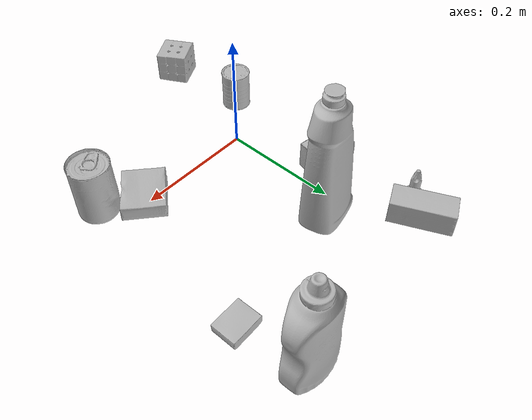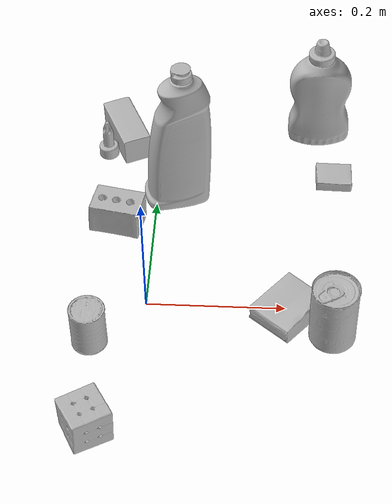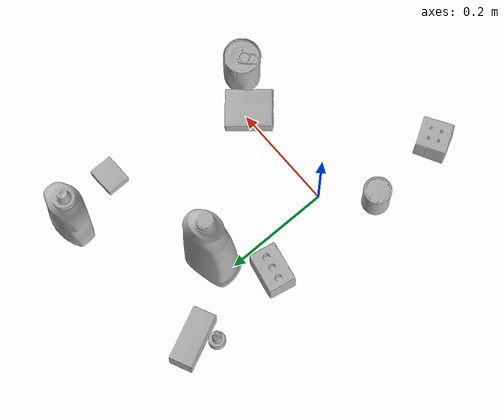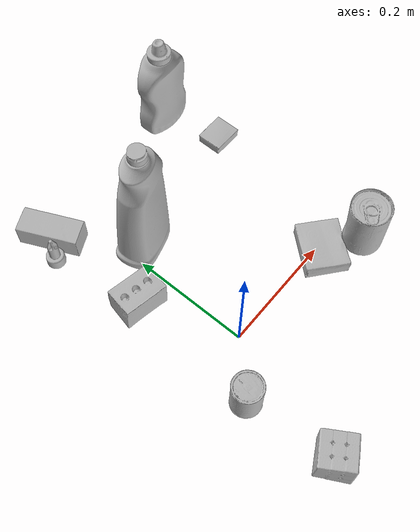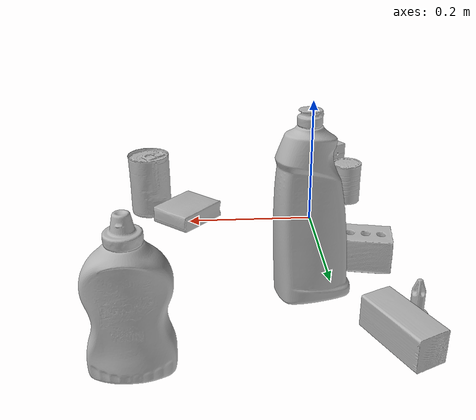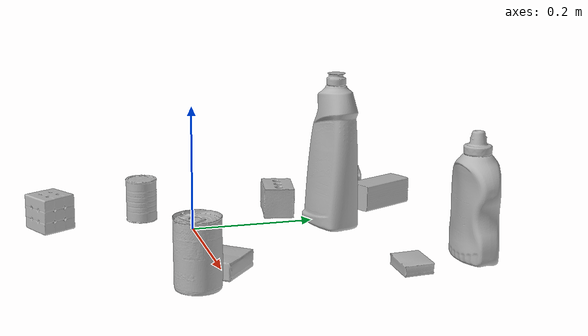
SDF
<sdf version="1.4">
  <world name="default">
    <light name="light1" type="point">
      <pose>0 0 1 0 0 0</pose>
      <diffuse>3 3 3 1</diffuse>
      <specular>3 3 3 1</specular>
    </light>
    <light name="light2" type="point">
      <pose>0 0.5 2 0 0 0</pose>
      <diffuse>1 1 1 1</diffuse>
      <specular>1 1 1 1</specular>
    </light>
    <light name="light3" type="point">
      <pose>0 0.5 2 0 0 0</pose>
      <diffuse>3 3 3 1</diffuse>
      <specular>3 3 3 1</specular>
    </light>
    <scene>
      <ambient>0.7 0.7 0.7</ambient>
    </scene>
    <model name="bottle1">
      <link name="link_bottle1">
        <collision name="default">
          <geometry>
            <mesh>
              <uri>model://bleach_cleanser/collision_meshes/collision.obj</uri>
              <scale>1.0 1.0 1.0</scale>
            </mesh>
          </geometry>
          <surface>
            <friction>
              <ode>
                <mu>0.5</mu>
                <mu2>0.5</mu2>
              </ode>
            </friction>
          <contact>
        <ode>
            <max_vel>0</max_vel>
            <min_depth>0.0001</min_depth>
            <kp>1e8</kp>
        </ode>
    </contact></surface>
        </collision>
        <visual name="default">
          <geometry>
            <mesh>
              <uri>model://bleach_cleanser/visual_meshes/visual.dae</uri>
              <scale>1.0 1.0 1.0</scale>
            </mesh>
          </geometry>
        </visual>
        <inertial>
          <mass>1.1050143241882324</mass>
          <pose>0.00012193183647468686 0.0037838828284293413 -0.02442161738872528 -0.07381670616137478 0.0004201160282461273 -0.006875061809122935</pose>
          <inertia>
            <ixx>0.0053782654</ixx>
            <iyy>0.005011756</iyy>
            <izz>0.00091954356</izz>
            <ixy>0</ixy>
            <ixz>0</ixz>
            <iyz>0</iyz>
          </inertia>
        </inertial>
      </link>
      <pose>0.03136127069592476 0.22331751883029938 0.12578414380550385 -0.00019974793728005794 1.634660812349984e-05 -1.3198140770824445</pose>
    </model>
    <model name="bottle2">
      <link name="link_bottle2">
        <collision name="default">
          <geometry>
            <mesh>
              <uri>model://mustard_bottle/collision_meshes/collision.obj</uri>
              <scale>1.0 1.0 1.0</scale>
            </mesh>
          </geometry>
          <surface>
            <friction>
              <ode>
                <mu>0.5</mu>
                <mu2>0.5</mu2>
              </ode>
            </friction>
          <contact>
        <ode>
            <max_vel>0</max_vel>
            <min_depth>0.0001</min_depth>
            <kp>1e8</kp>
        </ode>
    </contact></surface>
        </collision>
        <visual name="default">
          <geometry>
            <mesh>
              <uri>model://mustard_bottle/visual_meshes/visual.dae</uri>
              <scale>1.0 1.0 1.0</scale>
            </mesh>
          </geometry>
        </visual>
        <inertial>
          <mass>0.622285008430481</mass>
          <pose>0.0005032453336752951 -0.0001564739941386506 -0.0174757931381464 0.0004182326458762318 0.0009465782998157723 0.024853714910341117</pose>
          <inertia>
            <ixx>0.0017280002</ixx>
            <iyy>0.0015161741</iyy>
            <izz>0.00045541534</izz>
            <ixy>0</ixy>
            <ixz>0</ixz>
            <iyz>0</iyz>
          </inertia>
        </inertial>
      </link>
      <pose>0.24688035249710083 0.368906706571579 0.09583088010549545 -0.012050762421783752 -0.004889709383323103 1.5914158510085916</pose>
    </model>
    <model name="toy1">
      <link name="link_toy1">
        <collision name="default">
          <geometry>
            <mesh>
              <uri>model://foam_brick/collision_meshes/collision.obj</uri>
              <scale>1.0 1.0 1.0</scale>
            </mesh>
          </geometry>
          <surface>
            <friction>
              <ode>
                <mu>0.5</mu>
                <mu2>0.5</mu2>
              </ode>
            </friction>
          <contact>
        <ode>
            <max_vel>0</max_vel>
            <min_depth>0.0001</min_depth>
            <kp>1e8</kp>
        </ode>
    </contact></surface>
        </collision>
        <visual name="default">
          <geometry>
            <mesh>
              <uri>model://foam_brick/visual_meshes/visual.dae</uri>
              <scale>1.0 1.0 1.0</scale>
            </mesh>
          </geometry>
        </visual>
        <inertial>
          <mass>0.1664208173751831</mass>
          <pose>-0.00025224717683158815 0.0003458438441157341 -0.00025321010616607964 -0.2940189404221327 0.017274440573450563 -0.0007449871782747126</pose>
          <inertia>
            <ixx>7.269573e-05</ixx>
            <iyy>0.00011606247</iyy>
            <izz>0.000117537464</izz>
            <ixy>0</ixy>
            <ixz>0</ixz>
            <iyz>0</iyz>
          </inertia>
        </inertial>
      </link>
      <pose>-0.05561910942196846 0.1578242927789688 0.025922801345586777 0.013416814203463986 0.004153094139477485 2.9497076551953936</pose>
    </model>
    <model name="toy2">
      <link name="link_toy2">
        <collision name="default">
          <geometry>
            <mesh>
              <uri>model://d_toy_airplane/collision_meshes/collision.obj</uri>
              <scale>1.0 1.0 1.0</scale>
            </mesh>
          </geometry>
          <surface>
            <friction>
              <ode>
                <mu>0.5</mu>
                <mu2>0.5</mu2>
              </ode>
            </friction>
          <contact>
        <ode>
            <max_vel>0</max_vel>
            <min_depth>0.0001</min_depth>
            <kp>1e8</kp>
        </ode>
    </contact></surface>
        </collision>
        <visual name="default">
          <geometry>
            <mesh>
              <uri>model://d_toy_airplane/visual_meshes/visual.dae</uri>
              <scale>1.0 1.0 1.0</scale>
            </mesh>
          </geometry>
        </visual>
        <inertial>
          <mass>0.021938346326351166</mass>
          <pose>9.410325583303347e-05 -5.8093231928069144e-05 -0.01172809861600399 0.0002669142468379238 0.0046790018194854816 0.5194488187392164</pose>
          <inertia>
            <ixx>6.5766894e-06</ixx>
            <iyy>6.581649e-06</iyy>
            <izz>1.9855454e-06</izz>
            <ixy>0</ixy>
            <ixz>0</ixz>
            <iyz>0</iyz>
          </inertia>
        </inertial>
      </link>
      <pose>-0.08481532335281372 0.31059497594833374 0.03333929181098938 0.00020210543872707635 -3.9211691789785465e-05 -2.7266728549594332</pose>
    </model>
    <model name="can1">
      <link name="link_can1">
        <collision name="default">
          <geometry>
            <mesh>
              <uri>model://tomato_soup_can/collision_meshes/collision.obj</uri>
              <scale>1.0 1.0 1.0</scale>
            </mesh>
          </geometry>
          <surface>
            <friction>
              <ode>
                <mu>0.5</mu>
                <mu2>0.5</mu2>
              </ode>
            </friction>
          <contact>
        <ode>
            <max_vel>0</max_vel>
            <min_depth>0.0001</min_depth>
            <kp>1e8</kp>
        </ode>
    </contact></surface>
        </collision>
        <visual name="default">
          <geometry>
            <mesh>
              <uri>model://tomato_soup_can/visual_meshes/visual.dae</uri>
              <scale>1.0 1.0 1.0</scale>
            </mesh>
          </geometry>
        </visual>
        <inertial>
          <mass>0.39673706889152527</mass>
          <pose>0.00012652271834667772 0.00010805520287249237 -0.0017973972717300057 0.007020066809275346 0.000422998323222239 -0.009903841103285913</pose>
          <inertia>
            <ixx>0.00043498844</ixx>
            <iyy>0.00043247454</iyy>
            <izz>0.00022545052</izz>
            <ixy>0</ixy>
            <ixz>0</ixz>
            <iyz>0</iyz>
          </inertia>
        </inertial>
      </link>
      <pose>0.2654293477535248 -0.046671804040670395 0.05127401277422905 -1.1576638198351604e-07 -4.136376235694494e-07 -1.2268046916976438</pose>
    </model>
    <model name="can2">
      <link name="link_can2">
        <collision name="default">
          <geometry>
            <mesh>
              <uri>model://master_chef_can/collision_meshes/collision.obj</uri>
              <scale>0.5 0.5 0.5</scale>
            </mesh>
          </geometry>
          <surface>
            <friction>
              <ode>
                <mu>0.5</mu>
                <mu2>0.5</mu2>
              </ode>
            </friction>
          <contact>
        <ode>
            <max_vel>0</max_vel>
            <min_depth>0.0001</min_depth>
            <kp>1e8</kp>
        </ode>
    </contact></surface>
        </collision>
        <visual name="default">
          <geometry>
            <mesh>
              <uri>model://master_chef_can/visual_meshes/visual.dae</uri>
              <scale>0.5 0.5 0.5</scale>
            </mesh>
          </geometry>
        </visual>
        <inertial>
          <mass>0.08835740387439728</mass>
          <pose>-4.6619654312962666e-05 1.3926853625889635e-07 -5.079947004560381e-05 -0.0017995147102642629 0.0006479189020740588 -0.6102650934471076</pose>
          <inertia>
            <ixx>5.1859814e-05</ixx>
            <iyy>5.1478128e-05</iyy>
            <izz>2.8656508e-05</izz>
            <ixy>0</ixy>
            <ixz>0</ixz>
            <iyz>0</iyz>
          </inertia>
        </inertial>
      </link>
      <pose>-0.07378135621547699 -0.07173226028680801 0.035301998257637024 -1.2677837647592604e-06 -1.085967742043098e-06 2.0099187195361172</pose>
    </model>
    <model name="box1">
      <link name="link_box1">
        <collision name="default">
          <geometry>
            <mesh>
              <uri>model://wood_block/collision_meshes/collision.obj</uri>
              <scale>0.5 0.5 0.5</scale>
            </mesh>
          </geometry>
          <surface>
            <friction>
              <ode>
                <mu>0.5</mu>
                <mu2>0.5</mu2>
              </ode>
            </friction>
          <contact>
        <ode>
            <max_vel>0</max_vel>
            <min_depth>0.0001</min_depth>
            <kp>1e8</kp>
        </ode>
    </contact></surface>
        </collision>
        <visual name="default">
          <geometry>
            <mesh>
              <uri>model://wood_block/visual_meshes/visual.dae</uri>
              <scale>0.5 0.5 0.5</scale>
            </mesh>
          </geometry>
        </visual>
        <inertial>
          <mass>0.15377527475357056</mass>
          <pose>-2.9066577553749084e-06 -0.000285404734313488 0.00013204291462898254 -0.05220825990774677 -0.0051926953585221414 -0.0068613782788382646</pose>
          <inertia>
            <ixx>5.1443654e-05</ixx>
            <iyy>0.00016251049</iyy>
            <izz>0.00016190263</izz>
            <ixy>0</ixy>
            <ixz>0</ixz>
            <iyz>0</iyz>
          </inertia>
        </inertial>
      </link>
      <pose>-0.058518797159194946 0.34323033690452576 0.0226292684674263 -0.005208422162663686 0.005718819231141185 2.0041686367537337</pose>
    </model>
    <model name="box2">
      <link name="link_box2">
        <collision name="default">
          <geometry>
            <mesh>
              <uri>model://rubiks_cube/collision_meshes/collision.obj</uri>
              <scale>1.0 1.0 1.0</scale>
            </mesh>
          </geometry>
          <surface>
            <friction>
              <ode>
                <mu>0.5</mu>
                <mu2>0.5</mu2>
              </ode>
            </friction>
          <contact>
        <ode>
            <max_vel>0</max_vel>
            <min_depth>0.0001</min_depth>
            <kp>1e8</kp>
        </ode>
    </contact></surface>
        </collision>
        <visual name="default">
          <geometry>
            <mesh>
              <uri>model://rubiks_cube/visual_meshes/visual.dae</uri>
              <scale>1.0 1.0 1.0</scale>
            </mesh>
          </geometry>
        </visual>
        <inertial>
          <mass>0.2856966555118561</mass>
          <pose>2.6721041649580002e-05 5.2569666877388954e-05 -7.264316082000732e-06 -0.05467209736319516 -0.09813912050272719 -0.034455106160143086</pose>
          <inertia>
            <ixx>0.00015786657</ixx>
            <iyy>0.00015713037</iyy>
            <izz>0.00015917476</izz>
            <ixy>0</ixy>
            <ixz>0</ixz>
            <iyz>0</iyz>
          </inertia>
        </inertial>
      </link>
      <pose>-0.060916461050510406 -0.22210119664669037 0.028678948059678078 -4.419165317051126e-06 -1.8152956852682368e-06 2.1024576736049063</pose>
    </model>
    <model name="box3">
      <link name="link_box3">
        <collision name="default">
          <geometry>
            <mesh>
              <uri>model://gelatin_box/collision_meshes/collision.obj</uri>
              <scale>1.0 1.0 1.0</scale>
            </mesh>
          </geometry>
          <surface>
            <friction>
              <ode>
                <mu>0.5</mu>
                <mu2>0.5</mu2>
              </ode>
            </friction>
          <contact>
        <ode>
            <max_vel>0</max_vel>
            <min_depth>0.0001</min_depth>
            <kp>1e8</kp>
        </ode>
    </contact></surface>
        </collision>
        <visual name="default">
          <geometry>
            <mesh>
              <uri>model://gelatin_box/visual_meshes/visual.dae</uri>
              <scale>1.0 1.0 1.0</scale>
            </mesh>
          </geometry>
        </visual>
        <inertial>
          <mass>0.24612535536289215</mass>
          <pose>0.0004319618456065655 0.00011156871914863586 -0.00036403213744051754 -0.0010503719772071295 -0.004755818223732799 0.016440561334178715</pose>
          <inertia>
            <ixx>0.00017374444</ixx>
            <iyy>0.00012410474</iyy>
            <izz>0.00026447774</izz>
            <ixy>0</ixy>
            <ixz>0</ixz>
            <iyz>0</iyz>
          </inertia>
        </inertial>
      </link>
      <pose>0.2029525190591812 -0.009603689424693584 0.015168309211730957 0.005597188878704573 -0.007304283752910519 -0.7147506470415772</pose>
    </model>
    <model name="box4">
      <link name="link_box4">
        <collision name="default">
          <geometry>
            <mesh>
              <uri>model://pudding_box/collision_meshes/collision.obj</uri>
              <scale>0.5 0.5 0.5</scale>
            </mesh>
          </geometry>
          <surface>
            <friction>
              <ode>
                <mu>0.5</mu>
                <mu2>0.5</mu2>
              </ode>
            </friction>
          <contact>
        <ode>
            <max_vel>0</max_vel>
            <min_depth>0.0001</min_depth>
            <kp>1e8</kp>
        </ode>
    </contact></surface>
        </collision>
        <visual name="default">
          <geometry>
            <mesh>
              <uri>model://pudding_box/visual_meshes/visual.dae</uri>
              <scale>0.5 0.5 0.5</scale>
            </mesh>
          </geometry>
        </visual>
        <inertial>
          <mass>0.025328172370791435</mass>
          <pose>0.00024474109522998333 0.00040339428232982755 -0.0002594413817860186 0.00521310085836893 -0.006603797787762854 0.020079828890944847</pose>
          <inertia>
            <ixx>7.15805e-06</ixx>
            <iyy>4.8159864e-06</iyy>
            <izz>1.0570731e-05</izz>
            <ixy>0</ixy>
            <ixz>0</ixz>
            <iyz>0</iyz>
          </inertia>
        </inertial>
      </link>
      <pose>0.27205461263656616 0.26234155893325806 0.009862903505563736 0.022349559201287506 -0.01139118031174804 1.5795509641313519</pose>
    </model>
  <physics type="ode">
      <max_contacts>50</max_contacts>
      <ode>
        <solver>
          <type>quick</type>
          <iters>75</iters>
        </solver>
        <constraints>
          <contact_max_correcting_vel>0</contact_max_correcting_vel>
          <contact_surface_layer>0</contact_surface_layer>
        </constraints>
      </ode>
    </physics></world>
</sdf>
